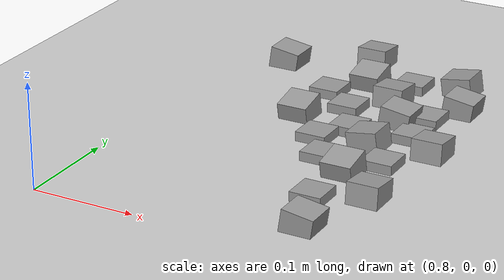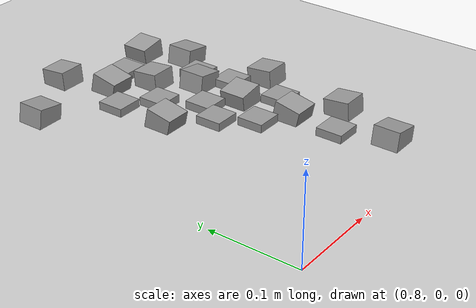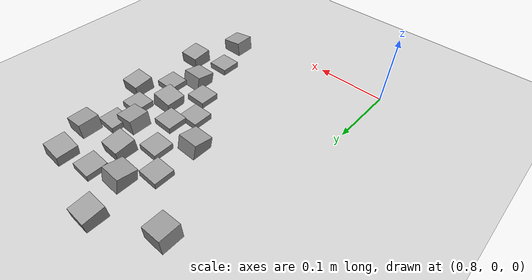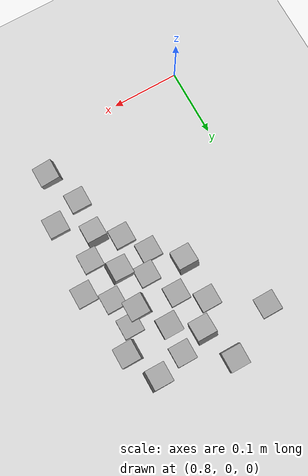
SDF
<sdf version="1.7">
 <world name="default">
  <model name="ground_plane">
   <static>1</static>
   <link name="link">
    <collision name="collision">
     <geometry><plane><normal>0 0 1</normal><size>100 100</size></plane></geometry>
     <surface><friction><ode><mu>100</mu><mu2>50</mu2></ode></friction></surface>
    </collision>
    <visual name="visual">
     <cast_shadows>0</cast_shadows>
     <geometry><plane><normal>0 0 1</normal><size>100 100</size></plane></geometry>
     <material>
      <script><uri>file://media/materials/scripts/gazebo.material</uri><name>Gazebo/Grey</name></script>
     </material>
    </visual>
   </link>
  </model>
  <model name="stone_road_11">
   <link name="link_0">
    <inertial>
     <mass>1</mass>
     <inertia>
      <ixx>0.166667</ixx>
      <ixy>0</ixy>
      <ixz>0</ixz>
      <iyy>0.166667</iyy>
      <iyz>0</iyz>
      <izz>0.166667</izz>
     </inertia>
    </inertial>
    <pose>-0.171827 0.03973 0.003778 0.2 -0 0</pose>
    <kinematic>1</kinematic>
    <visual name="visual">
     <geometry><box><size>0.03 0.03 0.03</size></box></geometry>
     <material>
      <lighting>1</lighting>
      <script><uri>file://media/materials/scripts/gazebo.material</uri><name>Gazebo/Grey</name></script>
      <shader type="pixel"><normal_map>__default__</normal_map></shader>
      <ambient>0.3 0.3 0.3 1</ambient>
      <diffuse>0.7 0.7 0.7 1</diffuse>
      <specular>0.01 0.01 0.01 1</specular>
      <emissive>0 0 0 1</emissive>
     </material>
    </visual>
    <collision name="collision">
     <geometry><box><size>0.03 0.03 0.03</size></box></geometry>
     <surface>
      <friction>
       <ode><mu>1</mu><mu2>1</mu2><fdir1>0 0 0</fdir1><slip1>0</slip1><slip2>0</slip2></ode>
       <torsional>
        <coefficient>1</coefficient>
        <patch_radius>0</patch_radius>
        <surface_radius>0</surface_radius>
        <use_patch_radius>1</use_patch_radius>
        <ode><slip>0</slip></ode>
       </torsional>
      </friction>
      <bounce><restitution_coefficient>0</restitution_coefficient><threshold>1e+06</threshold></bounce>
      <contact>
       <collide_without_contact>0</collide_without_contact>
       <collide_without_contact_bitmask>1</collide_without_contact_bitmask>
       <collide_bitmask>1</collide_bitmask>
       <ode>
        <soft_cfm>0</soft_cfm>
        <soft_erp>0.2</soft_erp>
        <kp>1e+13</kp>
        <kd>1</kd>
        <max_vel>0.01</max_vel>
        <min_depth>0</min_depth>
       </ode>
       <bullet>
        <split_impulse>1</split_impulse>
        <split_impulse_penetration_threshold>-0.01</split_impulse_penetration_threshold>
        <soft_cfm>0</soft_cfm>
        <soft_erp>0.2</soft_erp>
        <kp>1e+13</kp>
        <kd>1</kd>
       </bullet>
      </contact>
     </surface>
    </collision>
   </link>
   <link name="link_0_clone_0">
    <inertial>
     <mass>1</mass>
     <inertia>
      <ixx>0.166667</ixx>
      <ixy>0</ixy>
      <ixz>0</ixz>
      <iyy>0.166667</iyy>
      <iyz>0</iyz>
      <izz>0.166667</izz>
     </inertia>
    </inertial>
    <pose>-0.104982 -0.15412 0.003778 0.2 -0 0</pose>
    <kinematic>1</kinematic>
    <visual name="visual">
     <geometry><box><size>0.03 0.03 0.03</size></box></geometry>
     <material>
      <lighting>1</lighting>
      <script><uri>file://media/materials/scripts/gazebo.material</uri><name>Gazebo/Grey</name></script>
      <shader type="pixel"><normal_map>__default__</normal_map></shader>
      <ambient>0.3 0.3 0.3 1</ambient>
      <diffuse>0.7 0.7 0.7 1</diffuse>
      <specular>0.01 0.01 0.01 1</specular>
      <emissive>0 0 0 1</emissive>
     </material>
    </visual>
    <collision name="collision">
     <geometry><box><size>0.03 0.03 0.03</size></box></geometry>
     <surface>
      <friction>
       <ode><mu>1</mu><mu2>1</mu2><fdir1>0 0 0</fdir1><slip1>0</slip1><slip2>0</slip2></ode>
       <torsional>
        <coefficient>1</coefficient>
        <patch_radius>0</patch_radius>
        <surface_radius>0</surface_radius>
        <use_patch_radius>1</use_patch_radius>
        <ode><slip>0</slip></ode>
       </torsional>
      </friction>
      <bounce><restitution_coefficient>0</restitution_coefficient><threshold>1e+06</threshold></bounce>
      <contact>
       <collide_without_contact>0</collide_without_contact>
       <collide_without_contact_bitmask>1</collide_without_contact_bitmask>
       <collide_bitmask>1</collide_bitmask>
       <ode>
        <soft_cfm>0</soft_cfm>
        <soft_erp>0.2</soft_erp>
        <kp>1e+13</kp>
        <kd>1</kd>
        <max_vel>0.01</max_vel>
        <min_depth>0</min_depth>
       </ode>
       <bullet>
        <split_impulse>1</split_impulse>
        <split_impulse_penetration_threshold>-0.01</split_impulse_penetration_threshold>
        <soft_cfm>0</soft_cfm>
        <soft_erp>0.2</soft_erp>
        <kp>1e+13</kp>
        <kd>1</kd>
       </bullet>
      </contact>
     </surface>
    </collision>
   </link>
   <link name="link_0_clone_2">
    <inertial>
     <mass>1</mass>
     <inertia>
      <ixx>0.166667</ixx>
      <ixy>0</ixy>
      <ixz>0</ixz>
      <iyy>0.166667</iyy>
      <iyz>0</iyz>
      <izz>0.166667</izz>
     </inertia>
    </inertial>
    <pose>-0.065685 0.018139 0.003778 0 0.15 0</pose>
    <kinematic>1</kinematic>
    <visual name="visual">
     <geometry><box><size>0.03 0.03 0.03</size></box></geometry>
     <material>
      <lighting>1</lighting>
      <script><uri>file://media/materials/scripts/gazebo.material</uri><name>Gazebo/Grey</name></script>
      <shader type="pixel"><normal_map>__default__</normal_map></shader>
      <ambient>0.3 0.3 0.3 1</ambient>
      <diffuse>0.7 0.7 0.7 1</diffuse>
      <specular>0.01 0.01 0.01 1</specular>
      <emissive>0 0 0 1</emissive>
     </material>
    </visual>
    <collision name="collision">
     <geometry><box><size>0.03 0.03 0.03</size></box></geometry>
     <surface>
      <friction>
       <ode><mu>1</mu><mu2>1</mu2><fdir1>0 0 0</fdir1><slip1>0</slip1><slip2>0</slip2></ode>
       <torsional>
        <coefficient>1</coefficient>
        <patch_radius>0</patch_radius>
        <surface_radius>0</surface_radius>
        <use_patch_radius>1</use_patch_radius>
        <ode><slip>0</slip></ode>
       </torsional>
      </friction>
      <bounce><restitution_coefficient>0</restitution_coefficient><threshold>1e+06</threshold></bounce>
      <contact>
       <collide_without_contact>0</collide_without_contact>
       <collide_without_contact_bitmask>1</collide_without_contact_bitmask>
       <collide_bitmask>1</collide_bitmask>
       <ode>
        <soft_cfm>0</soft_cfm>
        <soft_erp>0.2</soft_erp>
        <kp>1e+13</kp>
        <kd>1</kd>
        <max_vel>0.01</max_vel>
        <min_depth>0</min_depth>
       </ode>
       <bullet>
        <split_impulse>1</split_impulse>
        <split_impulse_penetration_threshold>-0.01</split_impulse_penetration_threshold>
        <soft_cfm>0</soft_cfm>
        <soft_erp>0.2</soft_erp>
        <kp>1e+13</kp>
        <kd>1</kd>
       </bullet>
      </contact>
     </surface>
    </collision>
   </link>
   <link name="link_0_clone_2_clone">
    <inertial>
     <mass>1</mass>
     <inertia>
      <ixx>0.166667</ixx>
      <ixy>0</ixy>
      <ixz>0</ixz>
      <iyy>0.166667</iyy>
      <iyz>0</iyz>
      <izz>0.166667</izz>
     </inertia>
    </inertial>
    <pose>-0.10771 -0.03187 0.003778 0 0.15 0</pose>
    <kinematic>1</kinematic>
    <visual name="visual">
     <geometry><box><size>0.03 0.03 0.03</size></box></geometry>
     <material>
      <lighting>1</lighting>
      <script><uri>file://media/materials/scripts/gazebo.material</uri><name>Gazebo/Grey</name></script>
      <shader type="pixel"><normal_map>__default__</normal_map></shader>
      <ambient>0.3 0.3 0.3 1</ambient>
      <diffuse>0.7 0.7 0.7 1</diffuse>
      <specular>0.01 0.01 0.01 1</specular>
      <emissive>0 0 0 1</emissive>
     </material>
    </visual>
    <collision name="collision">
     <geometry><box><size>0.03 0.03 0.03</size></box></geometry>
     <surface>
      <friction>
       <ode><mu>1</mu><mu2>1</mu2><fdir1>0 0 0</fdir1><slip1>0</slip1><slip2>0</slip2></ode>
       <torsional>
        <coefficient>1</coefficient>
        <patch_radius>0</patch_radius>
        <surface_radius>0</surface_radius>
        <use_patch_radius>1</use_patch_radius>
        <ode><slip>0</slip></ode>
       </torsional>
      </friction>
      <bounce><restitution_coefficient>0</restitution_coefficient><threshold>1e+06</threshold></bounce>
      <contact>
       <collide_without_contact>0</collide_without_contact>
       <collide_without_contact_bitmask>1</collide_without_contact_bitmask>
       <collide_bitmask>1</collide_bitmask>
       <ode>
        <soft_cfm>0</soft_cfm>
        <soft_erp>0.2</soft_erp>
        <kp>1e+13</kp>
        <kd>1</kd>
        <max_vel>0.01</max_vel>
        <min_depth>0</min_depth>
       </ode>
       <bullet>
        <split_impulse>1</split_impulse>
        <split_impulse_penetration_threshold>-0.01</split_impulse_penetration_threshold>
        <soft_cfm>0</soft_cfm>
        <soft_erp>0.2</soft_erp>
        <kp>1e+13</kp>
        <kd>1</kd>
       </bullet>
      </contact>
     </surface>
    </collision>
   </link>
   <link name="link_0_clone_2_clone_2_clone_1">
    <inertial>
     <mass>1</mass>
     <inertia>
      <ixx>0.166667</ixx>
      <ixy>0</ixy>
      <ixz>0</ixz>
      <iyy>0.166667</iyy>
      <iyz>0</iyz>
      <izz>0.166667</izz>
     </inertia>
    </inertial>
    <pose>-0.085624 0.065625 0.003778 0 -0.15 0</pose>
    <kinematic>1</kinematic>
    <visual name="visual">
     <geometry><box><size>0.03 0.03 0.03</size></box></geometry>
     <material>
      <lighting>1</lighting>
      <script><uri>file://media/materials/scripts/gazebo.material</uri><name>Gazebo/Grey</name></script>
      <shader type="pixel"><normal_map>__default__</normal_map></shader>
      <ambient>0.3 0.3 0.3 1</ambient>
      <diffuse>0.7 0.7 0.7 1</diffuse>
      <specular>0.01 0.01 0.01 1</specular>
      <emissive>0 0 0 1</emissive>
     </material>
    </visual>
    <collision name="collision">
     <geometry><box><size>0.03 0.03 0.03</size></box></geometry>
     <surface>
      <friction>
       <ode><mu>1</mu><mu2>1</mu2><fdir1>0 0 0</fdir1><slip1>0</slip1><slip2>0</slip2></ode>
       <torsional>
        <coefficient>1</coefficient>
        <patch_radius>0</patch_radius>
        <surface_radius>0</surface_radius>
        <use_patch_radius>1</use_patch_radius>
        <ode><slip>0</slip></ode>
       </torsional>
      </friction>
      <bounce><restitution_coefficient>0</restitution_coefficient><threshold>1e+06</threshold></bounce>
      <contact>
       <collide_without_contact>0</collide_without_contact>
       <collide_without_contact_bitmask>1</collide_without_contact_bitmask>
       <collide_bitmask>1</collide_bitmask>
       <ode>
        <soft_cfm>0</soft_cfm>
        <soft_erp>0.2</soft_erp>
        <kp>1e+13</kp>
        <kd>1</kd>
        <max_vel>0.01</max_vel>
        <min_depth>0</min_depth>
       </ode>
       <bullet>
        <split_impulse>1</split_impulse>
        <split_impulse_penetration_threshold>-0.01</split_impulse_penetration_threshold>
        <soft_cfm>0</soft_cfm>
        <soft_erp>0.2</soft_erp>
        <kp>1e+13</kp>
        <kd>1</kd>
       </bullet>
      </contact>
     </surface>
    </collision>
   </link>
   <link name="link_0_clone_2_clone_2_clone_13_clone_clone_14">
    <inertial>
     <mass>1</mass>
     <inertia>
      <ixx>0.166667</ixx>
      <ixy>0</ixy>
      <ixz>0</ixz>
      <iyy>0.166667</iyy>
      <iyz>0</iyz>
      <izz>0.166667</izz>
     </inertia>
    </inertial>
    <pose>-0.190578 0.093923 0.003778 -0.1 0 0</pose>
    <kinematic>1</kinematic>
    <visual name="visual">
     <geometry><box><size>0.03 0.03 0.03</size></box></geometry>
     <material>
      <lighting>1</lighting>
      <script><uri>file://media/materials/scripts/gazebo.material</uri><name>Gazebo/Grey</name></script>
      <shader type="pixel"><normal_map>__default__</normal_map></shader>
      <ambient>0.3 0.3 0.3 1</ambient>
      <diffuse>0.7 0.7 0.7 1</diffuse>
      <specular>0.01 0.01 0.01 1</specular>
      <emissive>0 0 0 1</emissive>
     </material>
    </visual>
    <collision name="collision">
     <geometry><box><size>0.03 0.03 0.03</size></box></geometry>
     <surface>
      <friction>
       <ode><mu>1</mu><mu2>1</mu2><fdir1>0 0 0</fdir1><slip1>0</slip1><slip2>0</slip2></ode>
       <torsional>
        <coefficient>1</coefficient>
        <patch_radius>0</patch_radius>
        <surface_radius>0</surface_radius>
        <use_patch_radius>1</use_patch_radius>
        <ode><slip>0</slip></ode>
       </torsional>
      </friction>
      <bounce><restitution_coefficient>0</restitution_coefficient><threshold>1e+06</threshold></bounce>
      <contact>
       <collide_without_contact>0</collide_without_contact>
       <collide_without_contact_bitmask>1</collide_without_contact_bitmask>
       <collide_bitmask>1</collide_bitmask>
       <ode>
        <soft_cfm>0</soft_cfm>
        <soft_erp>0.2</soft_erp>
        <kp>1e+13</kp>
        <kd>1</kd>
        <max_vel>0.01</max_vel>
        <min_depth>0</min_depth>
       </ode>
       <bullet>
        <split_impulse>1</split_impulse>
        <split_impulse_penetration_threshold>-0.01</split_impulse_penetration_threshold>
        <soft_cfm>0</soft_cfm>
        <soft_erp>0.2</soft_erp>
        <kp>1e+13</kp>
        <kd>1</kd>
       </bullet>
      </contact>
     </surface>
    </collision>
   </link>
   <link name="link_0_clone_2_clone_2_clone_13_clone_clone_16_clone_10">
    <inertial>
     <mass>1</mass>
     <inertia>
      <ixx>0.166667</ixx>
      <ixy>0</ixy>
      <ixz>0</ixz>
      <iyy>0.166667</iyy>
      <iyz>0</iyz>
      <izz>0.166667</izz>
     </inertia>
    </inertial>
    <pose>-0.082186 -0.05781 -0.006222 0 -0 0</pose>
    <kinematic>1</kinematic>
    <visual name="visual">
     <geometry><box><size>0.03 0.03 0.03</size></box></geometry>
     <material>
      <lighting>1</lighting>
      <script><uri>file://media/materials/scripts/gazebo.material</uri><name>Gazebo/Grey</name></script>
      <shader type="pixel"><normal_map>__default__</normal_map></shader>
      <ambient>0.3 0.3 0.3 1</ambient>
      <diffuse>0.7 0.7 0.7 1</diffuse>
      <specular>0.01 0.01 0.01 1</specular>
      <emissive>0 0 0 1</emissive>
     </material>
    </visual>
    <collision name="collision">
     <geometry><box><size>0.03 0.03 0.03</size></box></geometry>
     <surface>
      <friction>
       <ode><mu>1</mu><mu2>1</mu2><fdir1>0 0 0</fdir1><slip1>0</slip1><slip2>0</slip2></ode>
       <torsional>
        <coefficient>1</coefficient>
        <patch_radius>0</patch_radius>
        <surface_radius>0</surface_radius>
        <use_patch_radius>1</use_patch_radius>
        <ode><slip>0</slip></ode>
       </torsional>
      </friction>
      <bounce><restitution_coefficient>0</restitution_coefficient><threshold>1e+06</threshold></bounce>
      <contact>
       <collide_without_contact>0</collide_without_contact>
       <collide_without_contact_bitmask>1</collide_without_contact_bitmask>
       <collide_bitmask>1</collide_bitmask>
       <ode>
        <soft_cfm>0</soft_cfm>
        <soft_erp>0.2</soft_erp>
        <kp>1e+13</kp>
        <kd>1</kd>
        <max_vel>0.01</max_vel>
        <min_depth>0</min_depth>
       </ode>
       <bullet>
        <split_impulse>1</split_impulse>
        <split_impulse_penetration_threshold>-0.01</split_impulse_penetration_threshold>
        <soft_cfm>0</soft_cfm>
        <soft_erp>0.2</soft_erp>
        <kp>1e+13</kp>
        <kd>1</kd>
       </bullet>
      </contact>
     </surface>
    </collision>
   </link>
   <link name="link_0_clone_2_clone_2_clone_13_clone_clone_16_clone_11">
    <inertial>
     <mass>1</mass>
     <inertia>
      <ixx>0.166667</ixx>
      <ixy>0</ixy>
      <ixz>0</ixz>
      <iyy>0.166667</iyy>
      <iyz>0</iyz>
      <izz>0.166667</izz>
     </inertia>
    </inertial>
    <pose>-0.141844 -0.066911 -0.006222 0 -0 0</pose>
    <kinematic>1</kinematic>
    <visual name="visual">
     <geometry><box><size>0.03 0.03 0.03</size></box></geometry>
     <material>
      <lighting>1</lighting>
      <script><uri>file://media/materials/scripts/gazebo.material</uri><name>Gazebo/Grey</name></script>
      <shader type="pixel"><normal_map>__default__</normal_map></shader>
      <ambient>0.3 0.3 0.3 1</ambient>
      <diffuse>0.7 0.7 0.7 1</diffuse>
      <specular>0.01 0.01 0.01 1</specular>
      <emissive>0 0 0 1</emissive>
     </material>
    </visual>
    <collision name="collision">
     <geometry><box><size>0.03 0.03 0.03</size></box></geometry>
     <surface>
      <friction>
       <ode><mu>1</mu><mu2>1</mu2><fdir1>0 0 0</fdir1><slip1>0</slip1><slip2>0</slip2></ode>
       <torsional>
        <coefficient>1</coefficient>
        <patch_radius>0</patch_radius>
        <surface_radius>0</surface_radius>
        <use_patch_radius>1</use_patch_radius>
        <ode><slip>0</slip></ode>
       </torsional>
      </friction>
      <bounce><restitution_coefficient>0</restitution_coefficient><threshold>1e+06</threshold></bounce>
      <contact>
       <collide_without_contact>0</collide_without_contact>
       <collide_without_contact_bitmask>1</collide_without_contact_bitmask>
       <collide_bitmask>1</collide_bitmask>
       <ode>
        <soft_cfm>0</soft_cfm>
        <soft_erp>0.2</soft_erp>
        <kp>1e+13</kp>
        <kd>1</kd>
        <max_vel>0.01</max_vel>
        <min_depth>0</min_depth>
       </ode>
       <bullet>
        <split_impulse>1</split_impulse>
        <split_impulse_penetration_threshold>-0.01</split_impulse_penetration_threshold>
        <soft_cfm>0</soft_cfm>
        <soft_erp>0.2</soft_erp>
        <kp>1e+13</kp>
        <kd>1</kd>
       </bullet>
      </contact>
     </surface>
    </collision>
   </link>
   <link name="link_0_clone_2_clone_2_clone_13_clone_clone_16_clone_12">
    <inertial>
     <mass>1</mass>
     <inertia>
      <ixx>0.166667</ixx>
      <ixy>0</ixy>
      <ixz>0</ixz>
      <iyy>0.166667</iyy>
      <iyz>0</iyz>
      <izz>0.166667</izz>
     </inertia>
    </inertial>
    <pose>-0.164908 -0.022947 -0.006222 0 -0 0</pose>
    <kinematic>1</kinematic>
    <visual name="visual">
     <geometry><box><size>0.03 0.03 0.03</size></box></geometry>
     <material>
      <lighting>1</lighting>
      <script><uri>file://media/materials/scripts/gazebo.material</uri><name>Gazebo/Grey</name></script>
      <shader type="pixel"><normal_map>__default__</normal_map></shader>
      <ambient>0.3 0.3 0.3 1</ambient>
      <diffuse>0.7 0.7 0.7 1</diffuse>
      <specular>0.01 0.01 0.01 1</specular>
      <emissive>0 0 0 1</emissive>
     </material>
    </visual>
    <collision name="collision">
     <geometry><box><size>0.03 0.03 0.03</size></box></geometry>
     <surface>
      <friction>
       <ode><mu>1</mu><mu2>1</mu2><fdir1>0 0 0</fdir1><slip1>0</slip1><slip2>0</slip2></ode>
       <torsional>
        <coefficient>1</coefficient>
        <patch_radius>0</patch_radius>
        <surface_radius>0</surface_radius>
        <use_patch_radius>1</use_patch_radius>
        <ode><slip>0</slip></ode>
       </torsional>
      </friction>
      <bounce><restitution_coefficient>0</restitution_coefficient><threshold>1e+06</threshold></bounce>
      <contact>
       <collide_without_contact>0</collide_without_contact>
       <collide_without_contact_bitmask>1</collide_without_contact_bitmask>
       <collide_bitmask>1</collide_bitmask>
       <ode>
        <soft_cfm>0</soft_cfm>
        <soft_erp>0.2</soft_erp>
        <kp>1e+13</kp>
        <kd>1</kd>
        <max_vel>0.01</max_vel>
        <min_depth>0</min_depth>
       </ode>
       <bullet>
        <split_impulse>1</split_impulse>
        <split_impulse_penetration_threshold>-0.01</split_impulse_penetration_threshold>
        <soft_cfm>0</soft_cfm>
        <soft_erp>0.2</soft_erp>
        <kp>1e+13</kp>
        <kd>1</kd>
       </bullet>
      </contact>
     </surface>
    </collision>
   </link>
   <link name="link_0_clone_2_clone_2_clone_13_clone_clone_16_clone_27">
    <inertial>
     <mass>1</mass>
     <inertia>
      <ixx>0.166667</ixx>
      <ixy>0</ixy>
      <ixz>0</ixz>
      <iyy>0.166667</iyy>
      <iyz>0</iyz>
      <izz>0.166667</izz>
     </inertia>
    </inertial>
    <pose>-0.137316 -0.132225 -0.006222 0 -0 0</pose>
    <kinematic>1</kinematic>
    <visual name="visual">
     <geometry><box><size>0.03 0.03 0.03</size></box></geometry>
     <material>
      <lighting>1</lighting>
      <script><uri>file://media/materials/scripts/gazebo.material</uri><name>Gazebo/Grey</name></script>
      <shader type="pixel"><normal_map>__default__</normal_map></shader>
      <ambient>0.3 0.3 0.3 1</ambient>
      <diffuse>0.7 0.7 0.7 1</diffuse>
      <specular>0.01 0.01 0.01 1</specular>
      <emissive>0 0 0 1</emissive>
     </material>
    </visual>
    <collision name="collision">
     <geometry><box><size>0.03 0.03 0.03</size></box></geometry>
     <surface>
      <friction>
       <ode><mu>1</mu><mu2>1</mu2><fdir1>0 0 0</fdir1><slip1>0</slip1><slip2>0</slip2></ode>
       <torsional>
        <coefficient>1</coefficient>
        <patch_radius>0</patch_radius>
        <surface_radius>0</surface_radius>
        <use_patch_radius>1</use_patch_radius>
        <ode><slip>0</slip></ode>
       </torsional>
      </friction>
      <bounce><restitution_coefficient>0</restitution_coefficient><threshold>1e+06</threshold></bounce>
      <contact>
       <collide_without_contact>0</collide_without_contact>
       <collide_without_contact_bitmask>1</collide_without_contact_bitmask>
       <collide_bitmask>1</collide_bitmask>
       <ode>
        <soft_cfm>0</soft_cfm>
        <soft_erp>0.2</soft_erp>
        <kp>1e+13</kp>
        <kd>1</kd>
        <max_vel>0.01</max_vel>
        <min_depth>0</min_depth>
       </ode>
       <bullet>
        <split_impulse>1</split_impulse>
        <split_impulse_penetration_threshold>-0.01</split_impulse_penetration_threshold>
        <soft_cfm>0</soft_cfm>
        <soft_erp>0.2</soft_erp>
        <kp>1e+13</kp>
        <kd>1</kd>
       </bullet>
      </contact>
     </surface>
    </collision>
   </link>
   <link name="link_0_clone_2_clone_2_clone_13_clone_clone_16_clone_28">
    <inertial>
     <mass>1</mass>
     <inertia>
      <ixx>0.166667</ixx>
      <ixy>0</ixy>
      <ixz>0</ixz>
      <iyy>0.166667</iyy>
      <iyz>0</iyz>
      <izz>0.166667</izz>
     </inertia>
    </inertial>
    <pose>-0.10708 -0.209042 -0.006222 0 -0 0</pose>
    <kinematic>1</kinematic>
    <visual name="visual">
     <geometry><box><size>0.03 0.03 0.03</size></box></geometry>
     <material>
      <lighting>1</lighting>
      <script><uri>file://media/materials/scripts/gazebo.material</uri><name>Gazebo/Grey</name></script>
      <shader type="pixel"><normal_map>__default__</normal_map></shader>
      <ambient>0.3 0.3 0.3 1</ambient>
      <diffuse>0.7 0.7 0.7 1</diffuse>
      <specular>0.01 0.01 0.01 1</specular>
      <emissive>0 0 0 1</emissive>
     </material>
    </visual>
    <collision name="collision">
     <geometry><box><size>0.03 0.03 0.03</size></box></geometry>
     <surface>
      <friction>
       <ode><mu>1</mu><mu2>1</mu2><fdir1>0 0 0</fdir1><slip1>0</slip1><slip2>0</slip2></ode>
       <torsional>
        <coefficient>1</coefficient>
        <patch_radius>0</patch_radius>
        <surface_radius>0</surface_radius>
        <use_patch_radius>1</use_patch_radius>
        <ode><slip>0</slip></ode>
       </torsional>
      </friction>
      <bounce><restitution_coefficient>0</restitution_coefficient><threshold>1e+06</threshold></bounce>
      <contact>
       <collide_without_contact>0</collide_without_contact>
       <collide_without_contact_bitmask>1</collide_without_contact_bitmask>
       <collide_bitmask>1</collide_bitmask>
       <ode>
        <soft_cfm>0</soft_cfm>
        <soft_erp>0.2</soft_erp>
        <kp>1e+13</kp>
        <kd>1</kd>
        <max_vel>0.01</max_vel>
        <min_depth>0</min_depth>
       </ode>
       <bullet>
        <split_impulse>1</split_impulse>
        <split_impulse_penetration_threshold>-0.01</split_impulse_penetration_threshold>
        <soft_cfm>0</soft_cfm>
        <soft_erp>0.2</soft_erp>
        <kp>1e+13</kp>
        <kd>1</kd>
       </bullet>
      </contact>
     </surface>
    </collision>
   </link>
   <link name="link_0_clone_2_clone_2_clone_13_clone_clone_16_clone_30">
    <inertial>
     <mass>1</mass>
     <inertia>
      <ixx>0.166667</ixx>
      <ixy>0</ixy>
      <ixz>0</ixz>
      <iyy>0.166667</iyy>
      <iyz>0</iyz>
      <izz>0.166667</izz>
     </inertia>
    </inertial>
    <pose>-0.160879 -0.095951 -0.006222 0 -0 0</pose>
    <kinematic>1</kinematic>
    <visual name="visual">
     <geometry><box><size>0.03 0.03 0.03</size></box></geometry>
     <material>
      <lighting>1</lighting>
      <script><uri>file://media/materials/scripts/gazebo.material</uri><name>Gazebo/Grey</name></script>
      <shader type="pixel"><normal_map>__default__</normal_map></shader>
      <ambient>0.3 0.3 0.3 1</ambient>
      <diffuse>0.7 0.7 0.7 1</diffuse>
      <specular>0.01 0.01 0.01 1</specular>
      <emissive>0 0 0 1</emissive>
     </material>
    </visual>
    <collision name="collision">
     <geometry><box><size>0.03 0.03 0.03</size></box></geometry>
     <surface>
      <friction>
       <ode><mu>1</mu><mu2>1</mu2><fdir1>0 0 0</fdir1><slip1>0</slip1><slip2>0</slip2></ode>
       <torsional>
        <coefficient>1</coefficient>
        <patch_radius>0</patch_radius>
        <surface_radius>0</surface_radius>
        <use_patch_radius>1</use_patch_radius>
        <ode><slip>0</slip></ode>
       </torsional>
      </friction>
      <bounce><restitution_coefficient>0</restitution_coefficient><threshold>1e+06</threshold></bounce>
      <contact>
       <collide_without_contact>0</collide_without_contact>
       <collide_without_contact_bitmask>1</collide_without_contact_bitmask>
       <collide_bitmask>1</collide_bitmask>
       <ode>
        <soft_cfm>0</soft_cfm>
        <soft_erp>0.2</soft_erp>
        <kp>1e+13</kp>
        <kd>1</kd>
        <max_vel>0.01</max_vel>
        <min_depth>0</min_depth>
       </ode>
       <bullet>
        <split_impulse>1</split_impulse>
        <split_impulse_penetration_threshold>-0.01</split_impulse_penetration_threshold>
        <soft_cfm>0</soft_cfm>
        <soft_erp>0.2</soft_erp>
        <kp>1e+13</kp>
        <kd>1</kd>
       </bullet>
      </contact>
     </surface>
    </collision>
   </link>
   <link name="link_0_clone_2_clone_2_clone_13_clone_clone_16_clone_31">
    <inertial>
     <mass>1</mass>
     <inertia>
      <ixx>0.166667</ixx>
      <ixy>0</ixy>
      <ixz>0</ixz>
      <iyy>0.166667</iyy>
      <iyz>0</iyz>
      <izz>0.166667</izz>
     </inertia>
    </inertial>
    <pose>-0.198811 0.004584 -0.006222 0 -0 0</pose>
    <kinematic>1</kinematic>
    <visual name="visual">
     <geometry><box><size>0.03 0.03 0.03</size></box></geometry>
     <material>
      <lighting>1</lighting>
      <script><uri>file://media/materials/scripts/gazebo.material</uri><name>Gazebo/Grey</name></script>
      <shader type="pixel"><normal_map>__default__</normal_map></shader>
      <ambient>0.3 0.3 0.3 1</ambient>
      <diffuse>0.7 0.7 0.7 1</diffuse>
      <specular>0.01 0.01 0.01 1</specular>
      <emissive>0 0 0 1</emissive>
     </material>
    </visual>
    <collision name="collision">
     <geometry><box><size>0.03 0.03 0.03</size></box></geometry>
     <surface>
      <friction>
       <ode><mu>1</mu><mu2>1</mu2><fdir1>0 0 0</fdir1><slip1>0</slip1><slip2>0</slip2></ode>
       <torsional>
        <coefficient>1</coefficient>
        <patch_radius>0</patch_radius>
        <surface_radius>0</surface_radius>
        <use_patch_radius>1</use_patch_radius>
        <ode><slip>0</slip></ode>
       </torsional>
      </friction>
      <bounce><restitution_coefficient>0</restitution_coefficient><threshold>1e+06</threshold></bounce>
      <contact>
       <collide_without_contact>0</collide_without_contact>
       <collide_without_contact_bitmask>1</collide_without_contact_bitmask>
       <collide_bitmask>1</collide_bitmask>
       <ode>
        <soft_cfm>0</soft_cfm>
        <soft_erp>0.2</soft_erp>
        <kp>1e+13</kp>
        <kd>1</kd>
        <max_vel>0.01</max_vel>
        <min_depth>0</min_depth>
       </ode>
       <bullet>
        <split_impulse>1</split_impulse>
        <split_impulse_penetration_threshold>-0.01</split_impulse_penetration_threshold>
        <soft_cfm>0</soft_cfm>
        <soft_erp>0.2</soft_erp>
        <kp>1e+13</kp>
        <kd>1</kd>
       </bullet>
      </contact>
     </surface>
    </collision>
   </link>
   <link name="link_0_clone_2_clone_2_clone_13_clone_clone_16_clone_4">
    <inertial>
     <mass>1</mass>
     <inertia>
      <ixx>0.166667</ixx>
      <ixy>0</ixy>
      <ixz>0</ixz>
      <iyy>0.166667</iyy>
      <iyz>0</iyz>
      <izz>0.166667</izz>
     </inertia>
    </inertial>
    <pose>-0.131411 0.053677 -0.006222 0 -0 0</pose>
    <kinematic>1</kinematic>
    <visual name="visual">
     <geometry><box><size>0.03 0.03 0.03</size></box></geometry>
     <material>
      <lighting>1</lighting>
      <script><uri>file://media/materials/scripts/gazebo.material</uri><name>Gazebo/Grey</name></script>
      <shader type="pixel"><normal_map>__default__</normal_map></shader>
      <ambient>0.3 0.3 0.3 1</ambient>
      <diffuse>0.7 0.7 0.7 1</diffuse>
      <specular>0.01 0.01 0.01 1</specular>
      <emissive>0 0 0 1</emissive>
     </material>
    </visual>
    <collision name="collision">
     <geometry><box><size>0.03 0.03 0.03</size></box></geometry>
     <surface>
      <friction>
       <ode><mu>1</mu><mu2>1</mu2><fdir1>0 0 0</fdir1><slip1>0</slip1><slip2>0</slip2></ode>
       <torsional>
        <coefficient>1</coefficient>
        <patch_radius>0</patch_radius>
        <surface_radius>0</surface_radius>
        <use_patch_radius>1</use_patch_radius>
        <ode><slip>0</slip></ode>
       </torsional>
      </friction>
      <bounce><restitution_coefficient>0</restitution_coefficient><threshold>1e+06</threshold></bounce>
      <contact>
       <collide_without_contact>0</collide_without_contact>
       <collide_without_contact_bitmask>1</collide_without_contact_bitmask>
       <collide_bitmask>1</collide_bitmask>
       <ode>
        <soft_cfm>0</soft_cfm>
        <soft_erp>0.2</soft_erp>
        <kp>1e+13</kp>
        <kd>1</kd>
        <max_vel>0.01</max_vel>
        <min_depth>0</min_depth>
       </ode>
       <bullet>
        <split_impulse>1</split_impulse>
        <split_impulse_penetration_threshold>-0.01</split_impulse_penetration_threshold>
        <soft_cfm>0</soft_cfm>
        <soft_erp>0.2</soft_erp>
        <kp>1e+13</kp>
        <kd>1</kd>
       </bullet>
      </contact>
     </surface>
    </collision>
   </link>
   <link name="link_0_clone_2_clone_2_clone_13_clone_clone_16_clone_5">
    <inertial>
     <mass>1</mass>
     <inertia>
      <ixx>0.166667</ixx>
      <ixy>0</ixy>
      <ixz>0</ixz>
      <iyy>0.166667</iyy>
      <iyz>0</iyz>
      <izz>0.166667</izz>
     </inertia>
    </inertial>
    <pose>-0.086674 -0.014784 -0.006222 0 -0 0</pose>
    <kinematic>1</kinematic>
    <visual name="visual">
     <geometry><box><size>0.03 0.03 0.03</size></box></geometry>
     <material>
      <lighting>1</lighting>
      <script><uri>file://media/materials/scripts/gazebo.material</uri><name>Gazebo/Grey</name></script>
      <shader type="pixel"><normal_map>__default__</normal_map></shader>
      <ambient>0.3 0.3 0.3 1</ambient>
      <diffuse>0.7 0.7 0.7 1</diffuse>
      <specular>0.01 0.01 0.01 1</specular>
      <emissive>0 0 0 1</emissive>
     </material>
    </visual>
    <collision name="collision">
     <geometry><box><size>0.03 0.03 0.03</size></box></geometry>
     <surface>
      <friction>
       <ode><mu>1</mu><mu2>1</mu2><fdir1>0 0 0</fdir1><slip1>0</slip1><slip2>0</slip2></ode>
       <torsional>
        <coefficient>1</coefficient>
        <patch_radius>0</patch_radius>
        <surface_radius>0</surface_radius>
        <use_patch_radius>1</use_patch_radius>
        <ode><slip>0</slip></ode>
       </torsional>
      </friction>
      <bounce><restitution_coefficient>0</restitution_coefficient><threshold>1e+06</threshold></bounce>
      <contact>
       <collide_without_contact>0</collide_without_contact>
       <collide_without_contact_bitmask>1</collide_without_contact_bitmask>
       <collide_bitmask>1</collide_bitmask>
       <ode>
        <soft_cfm>0</soft_cfm>
        <soft_erp>0.2</soft_erp>
        <kp>1e+13</kp>
        <kd>1</kd>
        <max_vel>0.01</max_vel>
        <min_depth>0</min_depth>
       </ode>
       <bullet>
        <split_impulse>1</split_impulse>
        <split_impulse_penetration_threshold>-0.01</split_impulse_penetration_threshold>
        <soft_cfm>0</soft_cfm>
        <soft_erp>0.2</soft_erp>
        <kp>1e+13</kp>
        <kd>1</kd>
       </bullet>
      </contact>
     </surface>
    </collision>
   </link>
   <link name="link_0_clone_2_clone_2_clone_13_clone_clone_16_clone_9">
    <inertial>
     <mass>1</mass>
     <inertia>
      <ixx>0.166667</ixx>
      <ixy>0</ixy>
      <ixz>0</ixz>
      <iyy>0.166667</iyy>
      <iyz>0</iyz>
      <izz>0.166667</izz>
     </inertia>
    </inertial>
    <pose>-0.081689 -0.122641 -0.006222 0 -0 0</pose>
    <kinematic>1</kinematic>
    <visual name="visual">
     <geometry><box><size>0.03 0.03 0.03</size></box></geometry>
     <material>
      <lighting>1</lighting>
      <script><uri>file://media/materials/scripts/gazebo.material</uri><name>Gazebo/Grey</name></script>
      <shader type="pixel"><normal_map>__default__</normal_map></shader>
      <ambient>0.3 0.3 0.3 1</ambient>
      <diffuse>0.7 0.7 0.7 1</diffuse>
      <specular>0.01 0.01 0.01 1</specular>
      <emissive>0 0 0 1</emissive>
     </material>
    </visual>
    <collision name="collision">
     <geometry><box><size>0.03 0.03 0.03</size></box></geometry>
     <surface>
      <friction>
       <ode><mu>1</mu><mu2>1</mu2><fdir1>0 0 0</fdir1><slip1>0</slip1><slip2>0</slip2></ode>
       <torsional>
        <coefficient>1</coefficient>
        <patch_radius>0</patch_radius>
        <surface_radius>0</surface_radius>
        <use_patch_radius>1</use_patch_radius>
        <ode><slip>0</slip></ode>
       </torsional>
      </friction>
      <bounce><restitution_coefficient>0</restitution_coefficient><threshold>1e+06</threshold></bounce>
      <contact>
       <collide_without_contact>0</collide_without_contact>
       <collide_without_contact_bitmask>1</collide_without_contact_bitmask>
       <collide_bitmask>1</collide_bitmask>
       <ode>
        <soft_cfm>0</soft_cfm>
        <soft_erp>0.2</soft_erp>
        <kp>1e+13</kp>
        <kd>1</kd>
        <max_vel>0.01</max_vel>
        <min_depth>0</min_depth>
       </ode>
       <bullet>
        <split_impulse>1</split_impulse>
        <split_impulse_penetration_threshold>-0.01</split_impulse_penetration_threshold>
        <soft_cfm>0</soft_cfm>
        <soft_erp>0.2</soft_erp>
        <kp>1e+13</kp>
        <kd>1</kd>
       </bullet>
      </contact>
     </surface>
    </collision>
   </link>
   <link name="link_0_clone_2_clone_2_clone_13_clone_clone_7">
    <inertial>
     <mass>1</mass>
     <inertia>
      <ixx>0.166667</ixx>
      <ixy>0</ixy>
      <ixz>0</ixz>
      <iyy>0.166667</iyy>
      <iyz>0</iyz>
      <izz>0.166667</izz>
     </inertia>
    </inertial>
    <pose>-0.133876 0.010561 0.003778 -0.1 0 0</pose>
    <kinematic>1</kinematic>
    <visual name="visual">
     <geometry><box><size>0.03 0.03 0.03</size></box></geometry>
     <material>
      <lighting>1</lighting>
      <script><uri>file://media/materials/scripts/gazebo.material</uri><name>Gazebo/Grey</name></script>
      <shader type="pixel"><normal_map>__default__</normal_map></shader>
      <ambient>0.3 0.3 0.3 1</ambient>
      <diffuse>0.7 0.7 0.7 1</diffuse>
      <specular>0.01 0.01 0.01 1</specular>
      <emissive>0 0 0 1</emissive>
     </material>
    </visual>
    <collision name="collision">
     <geometry><box><size>0.03 0.03 0.03</size></box></geometry>
     <surface>
      <friction>
       <ode><mu>1</mu><mu2>1</mu2><fdir1>0 0 0</fdir1><slip1>0</slip1><slip2>0</slip2></ode>
       <torsional>
        <coefficient>1</coefficient>
        <patch_radius>0</patch_radius>
        <surface_radius>0</surface_radius>
        <use_patch_radius>1</use_patch_radius>
        <ode><slip>0</slip></ode>
       </torsional>
      </friction>
      <bounce><restitution_coefficient>0</restitution_coefficient><threshold>1e+06</threshold></bounce>
      <contact>
       <collide_without_contact>0</collide_without_contact>
       <collide_without_contact_bitmask>1</collide_without_contact_bitmask>
       <collide_bitmask>1</collide_bitmask>
       <ode>
        <soft_cfm>0</soft_cfm>
        <soft_erp>0.2</soft_erp>
        <kp>1e+13</kp>
        <kd>1</kd>
        <max_vel>0.01</max_vel>
        <min_depth>0</min_depth>
       </ode>
       <bullet>
        <split_impulse>1</split_impulse>
        <split_impulse_penetration_threshold>-0.01</split_impulse_penetration_threshold>
        <soft_cfm>0</soft_cfm>
        <soft_erp>0.2</soft_erp>
        <kp>1e+13</kp>
        <kd>1</kd>
       </bullet>
      </contact>
     </surface>
    </collision>
   </link>
   <link name="link_0_clone_2_clone_2_clone_13_clone_clone_8">
    <inertial>
     <mass>1</mass>
     <inertia>
      <ixx>0.166667</ixx>
      <ixy>0</ixy>
      <ixz>0</ixz>
      <iyy>0.166667</iyy>
      <iyz>0</iyz>
      <izz>0.166667</izz>
     </inertia>
    </inertial>
    <pose>-0.051207 -0.083778 0.003778 -0.1 0 0</pose>
    <kinematic>1</kinematic>
    <visual name="visual">
     <geometry><box><size>0.03 0.03 0.03</size></box></geometry>
     <material>
      <lighting>1</lighting>
      <script><uri>file://media/materials/scripts/gazebo.material</uri><name>Gazebo/Grey</name></script>
      <shader type="pixel"><normal_map>__default__</normal_map></shader>
      <ambient>0.3 0.3 0.3 1</ambient>
      <diffuse>0.7 0.7 0.7 1</diffuse>
      <specular>0.01 0.01 0.01 1</specular>
      <emissive>0 0 0 1</emissive>
     </material>
    </visual>
    <collision name="collision">
     <geometry><box><size>0.03 0.03 0.03</size></box></geometry>
     <surface>
      <friction>
       <ode><mu>1</mu><mu2>1</mu2><fdir1>0 0 0</fdir1><slip1>0</slip1><slip2>0</slip2></ode>
       <torsional>
        <coefficient>1</coefficient>
        <patch_radius>0</patch_radius>
        <surface_radius>0</surface_radius>
        <use_patch_radius>1</use_patch_radius>
        <ode><slip>0</slip></ode>
       </torsional>
      </friction>
      <bounce><restitution_coefficient>0</restitution_coefficient><threshold>1e+06</threshold></bounce>
      <contact>
       <collide_without_contact>0</collide_without_contact>
       <collide_without_contact_bitmask>1</collide_without_contact_bitmask>
       <collide_bitmask>1</collide_bitmask>
       <ode>
        <soft_cfm>0</soft_cfm>
        <soft_erp>0.2</soft_erp>
        <kp>1e+13</kp>
        <kd>1</kd>
        <max_vel>0.01</max_vel>
        <min_depth>0</min_depth>
       </ode>
       <bullet>
        <split_impulse>1</split_impulse>
        <split_impulse_penetration_threshold>-0.01</split_impulse_penetration_threshold>
        <soft_cfm>0</soft_cfm>
        <soft_erp>0.2</soft_erp>
        <kp>1e+13</kp>
        <kd>1</kd>
       </bullet>
      </contact>
     </surface>
    </collision>
   </link>
   <link name="link_0_clone_2_clone_2_clone_13_clone_clone_9">
    <inertial>
     <mass>1</mass>
     <inertia>
      <ixx>0.166667</ixx>
      <ixy>0</ixy>
      <ixz>0</ixz>
      <iyy>0.166667</iyy>
      <iyz>0</iyz>
      <izz>0.166667</izz>
     </inertia>
    </inertial>
    <pose>-0.062692 -0.190617 0.003778 -0.1 0 0</pose>
    <kinematic>1</kinematic>
    <visual name="visual">
     <geometry><box><size>0.03 0.03 0.03</size></box></geometry>
     <material>
      <lighting>1</lighting>
      <script><uri>file://media/materials/scripts/gazebo.material</uri><name>Gazebo/Grey</name></script>
      <shader type="pixel"><normal_map>__default__</normal_map></shader>
      <ambient>0.3 0.3 0.3 1</ambient>
      <diffuse>0.7 0.7 0.7 1</diffuse>
      <specular>0.01 0.01 0.01 1</specular>
      <emissive>0 0 0 1</emissive>
     </material>
    </visual>
    <collision name="collision">
     <geometry><box><size>0.03 0.03 0.03</size></box></geometry>
     <surface>
      <friction>
       <ode><mu>1</mu><mu2>1</mu2><fdir1>0 0 0</fdir1><slip1>0</slip1><slip2>0</slip2></ode>
       <torsional>
        <coefficient>1</coefficient>
        <patch_radius>0</patch_radius>
        <surface_radius>0</surface_radius>
        <use_patch_radius>1</use_patch_radius>
        <ode><slip>0</slip></ode>
       </torsional>
      </friction>
      <bounce><restitution_coefficient>0</restitution_coefficient><threshold>1e+06</threshold></bounce>
      <contact>
       <collide_without_contact>0</collide_without_contact>
       <collide_without_contact_bitmask>1</collide_without_contact_bitmask>
       <collide_bitmask>1</collide_bitmask>
       <ode>
        <soft_cfm>0</soft_cfm>
        <soft_erp>0.2</soft_erp>
        <kp>1e+13</kp>
        <kd>1</kd>
        <max_vel>0.01</max_vel>
        <min_depth>0</min_depth>
       </ode>
       <bullet>
        <split_impulse>1</split_impulse>
        <split_impulse_penetration_threshold>-0.01</split_impulse_penetration_threshold>
        <soft_cfm>0</soft_cfm>
        <soft_erp>0.2</soft_erp>
        <kp>1e+13</kp>
        <kd>1</kd>
       </bullet>
      </contact>
     </surface>
    </collision>
   </link>
   <link name="link_0_clone_2_clone_2_clone_3">
    <inertial>
     <mass>1</mass>
     <inertia>
      <ixx>0.166667</ixx>
      <ixy>0</ixy>
      <ixz>0</ixz>
      <iyy>0.166667</iyy>
      <iyz>0</iyz>
      <izz>0.166667</izz>
     </inertia>
    </inertial>
    <pose>-0.110514 -0.090915 0.003778 0 -0.15 0</pose>
    <kinematic>1</kinematic>
    <visual name="visual">
     <geometry><box><size>0.03 0.03 0.03</size></box></geometry>
     <material>
      <lighting>1</lighting>
      <script><uri>file://media/materials/scripts/gazebo.material</uri><name>Gazebo/Grey</name></script>
      <shader type="pixel"><normal_map>__default__</normal_map></shader>
      <ambient>0.3 0.3 0.3 1</ambient>
      <diffuse>0.7 0.7 0.7 1</diffuse>
      <specular>0.01 0.01 0.01 1</specular>
      <emissive>0 0 0 1</emissive>
     </material>
    </visual>
    <collision name="collision">
     <geometry><box><size>0.03 0.03 0.03</size></box></geometry>
     <surface>
      <friction>
       <ode><mu>1</mu><mu2>1</mu2><fdir1>0 0 0</fdir1><slip1>0</slip1><slip2>0</slip2></ode>
       <torsional>
        <coefficient>1</coefficient>
        <patch_radius>0</patch_radius>
        <surface_radius>0</surface_radius>
        <use_patch_radius>1</use_patch_radius>
        <ode><slip>0</slip></ode>
       </torsional>
      </friction>
      <bounce><restitution_coefficient>0</restitution_coefficient><threshold>1e+06</threshold></bounce>
      <contact>
       <collide_without_contact>0</collide_without_contact>
       <collide_without_contact_bitmask>1</collide_without_contact_bitmask>
       <collide_bitmask>1</collide_bitmask>
       <ode>
        <soft_cfm>0</soft_cfm>
        <soft_erp>0.2</soft_erp>
        <kp>1e+13</kp>
        <kd>1</kd>
        <max_vel>0.01</max_vel>
        <min_depth>0</min_depth>
       </ode>
       <bullet>
        <split_impulse>1</split_impulse>
        <split_impulse_penetration_threshold>-0.01</split_impulse_penetration_threshold>
        <soft_cfm>0</soft_cfm>
        <soft_erp>0.2</soft_erp>
        <kp>1e+13</kp>
        <kd>1</kd>
       </bullet>
      </contact>
     </surface>
    </collision>
   </link>
   <link name="link_0_clone_2_clone_5">
    <inertial>
     <mass>1</mass>
     <inertia>
      <ixx>0.166667</ixx>
      <ixy>0</ixy>
      <ixz>0</ixz>
      <iyy>0.166667</iyy>
      <iyz>0</iyz>
      <izz>0.166667</izz>
     </inertia>
    </inertial>
    <pose>-0.268485 0.053169 0.003778 0 0.15 0</pose>
    <kinematic>1</kinematic>
    <visual name="visual">
     <geometry><box><size>0.03 0.03 0.03</size></box></geometry>
     <material>
      <lighting>1</lighting>
      <script><uri>file://media/materials/scripts/gazebo.material</uri><name>Gazebo/Grey</name></script>
      <shader type="pixel"><normal_map>__default__</normal_map></shader>
      <ambient>0.3 0.3 0.3 1</ambient>
      <diffuse>0.7 0.7 0.7 1</diffuse>
      <specular>0.01 0.01 0.01 1</specular>
      <emissive>0 0 0 1</emissive>
     </material>
    </visual>
    <collision name="collision">
     <geometry><box><size>0.03 0.03 0.03</size></box></geometry>
     <surface>
      <friction>
       <ode><mu>1</mu><mu2>1</mu2><fdir1>0 0 0</fdir1><slip1>0</slip1><slip2>0</slip2></ode>
       <torsional>
        <coefficient>1</coefficient>
        <patch_radius>0</patch_radius>
        <surface_radius>0</surface_radius>
        <use_patch_radius>1</use_patch_radius>
        <ode><slip>0</slip></ode>
       </torsional>
      </friction>
      <bounce><restitution_coefficient>0</restitution_coefficient><threshold>1e+06</threshold></bounce>
      <contact>
       <collide_without_contact>0</collide_without_contact>
       <collide_without_contact_bitmask>1</collide_without_contact_bitmask>
       <collide_bitmask>1</collide_bitmask>
       <ode>
        <soft_cfm>0</soft_cfm>
        <soft_erp>0.2</soft_erp>
        <kp>1e+13</kp>
        <kd>1</kd>
        <max_vel>0.01</max_vel>
        <min_depth>0</min_depth>
       </ode>
       <bullet>
        <split_impulse>1</split_impulse>
        <split_impulse_penetration_threshold>-0.01</split_impulse_penetration_threshold>
        <soft_cfm>0</soft_cfm>
        <soft_erp>0.2</soft_erp>
        <kp>1e+13</kp>
        <kd>1</kd>
       </bullet>
      </contact>
     </surface>
    </collision>
   </link>
   <link name="link_0_clone_2_clone_6">
    <inertial>
     <mass>1</mass>
     <inertia>
      <ixx>0.166667</ixx>
      <ixy>0</ixy>
      <ixz>0</ixz>
      <iyy>0.166667</iyy>
      <iyz>0</iyz>
      <izz>0.166667</izz>
     </inertia>
    </inertial>
    <pose>-0.087859 -0.263184 0.003778 0 0.15 0</pose>
    <kinematic>1</kinematic>
    <visual name="visual">
     <geometry><box><size>0.03 0.03 0.03</size></box></geometry>
     <material>
      <lighting>1</lighting>
      <script><uri>file://media/materials/scripts/gazebo.material</uri><name>Gazebo/Grey</name></script>
      <shader type="pixel"><normal_map>__default__</normal_map></shader>
      <ambient>0.3 0.3 0.3 1</ambient>
      <diffuse>0.7 0.7 0.7 1</diffuse>
      <specular>0.01 0.01 0.01 1</specular>
      <emissive>0 0 0 1</emissive>
     </material>
    </visual>
    <collision name="collision">
     <geometry><box><size>0.03 0.03 0.03</size></box></geometry>
     <surface>
      <friction>
       <ode><mu>1</mu><mu2>1</mu2><fdir1>0 0 0</fdir1><slip1>0</slip1><slip2>0</slip2></ode>
       <torsional>
        <coefficient>1</coefficient>
        <patch_radius>0</patch_radius>
        <surface_radius>0</surface_radius>
        <use_patch_radius>1</use_patch_radius>
        <ode><slip>0</slip></ode>
       </torsional>
      </friction>
      <bounce><restitution_coefficient>0</restitution_coefficient><threshold>1e+06</threshold></bounce>
      <contact>
       <collide_without_contact>0</collide_without_contact>
       <collide_without_contact_bitmask>1</collide_without_contact_bitmask>
       <collide_bitmask>1</collide_bitmask>
       <ode>
        <soft_cfm>0</soft_cfm>
        <soft_erp>0.2</soft_erp>
        <kp>1e+13</kp>
        <kd>1</kd>
        <max_vel>0.01</max_vel>
        <min_depth>0</min_depth>
       </ode>
       <bullet>
        <split_impulse>1</split_impulse>
        <split_impulse_penetration_threshold>-0.01</split_impulse_penetration_threshold>
        <soft_cfm>0</soft_cfm>
        <soft_erp>0.2</soft_erp>
        <kp>1e+13</kp>
        <kd>1</kd>
       </bullet>
      </contact>
     </surface>
    </collision>
   </link>
   <link name="link_0_clone_6">
    <inertial>
     <mass>1</mass>
     <inertia>
      <ixx>0.166667</ixx>
      <ixy>0</ixy>
      <ixz>0</ixz>
      <iyy>0.166667</iyy>
      <iyz>0</iyz>
      <izz>0.166667</izz>
     </inertia>
    </inertial>
    <pose>-0.198423 -0.058498 0.003778 0.2 -0 0</pose>
    <kinematic>1</kinematic>
    <visual name="visual">
     <geometry><box><size>0.03 0.03 0.03</size></box></geometry>
     <material>
      <lighting>1</lighting>
      <script><uri>file://media/materials/scripts/gazebo.material</uri><name>Gazebo/Grey</name></script>
      <shader type="pixel"><normal_map>__default__</normal_map></shader>
      <ambient>0.3 0.3 0.3 1</ambient>
      <diffuse>0.7 0.7 0.7 1</diffuse>
      <specular>0.01 0.01 0.01 1</specular>
      <emissive>0 0 0 1</emissive>
     </material>
    </visual>
    <collision name="collision">
     <geometry><box><size>0.03 0.03 0.03</size></box></geometry>
     <surface>
      <friction>
       <ode><mu>1</mu><mu2>1</mu2><fdir1>0 0 0</fdir1><slip1>0</slip1><slip2>0</slip2></ode>
       <torsional>
        <coefficient>1</coefficient>
        <patch_radius>0</patch_radius>
        <surface_radius>0</surface_radius>
        <use_patch_radius>1</use_patch_radius>
        <ode><slip>0</slip></ode>
       </torsional>
      </friction>
      <bounce><restitution_coefficient>0</restitution_coefficient><threshold>1e+06</threshold></bounce>
      <contact>
       <collide_without_contact>0</collide_without_contact>
       <collide_without_contact_bitmask>1</collide_without_contact_bitmask>
       <collide_bitmask>1</collide_bitmask>
       <ode>
        <soft_cfm>0</soft_cfm>
        <soft_erp>0.2</soft_erp>
        <kp>1e+13</kp>
        <kd>1</kd>
        <max_vel>0.01</max_vel>
        <min_depth>0</min_depth>
       </ode>
       <bullet>
        <split_impulse>1</split_impulse>
        <split_impulse_penetration_threshold>-0.01</split_impulse_penetration_threshold>
        <soft_cfm>0</soft_cfm>
        <soft_erp>0.2</soft_erp>
        <kp>1e+13</kp>
        <kd>1</kd>
       </bullet>
      </contact>
     </surface>
    </collision>
   </link>
   <static>0</static>
   <pose>1.12471 0.310289 -0 0 -0 0</pose>
  </model>
 </world>
</sdf>
